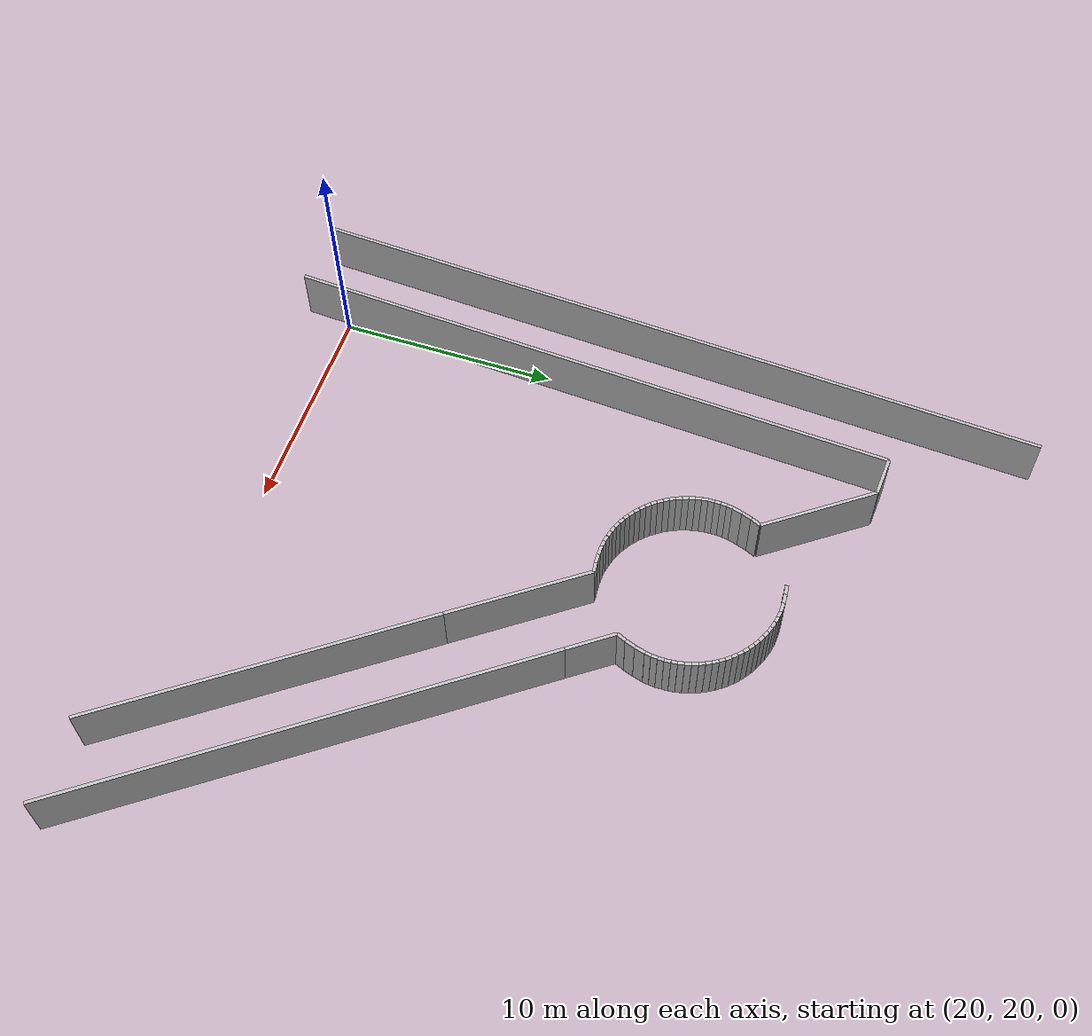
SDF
<?xml version="1.0" ?>
<sdf version="1.6">
  <model name="sps_4729">
    <pose frame="">0 0 0 0 -0 0</pose>
    <static>1</static>
    <self_collide>0</self_collide>
    <allow_auto_disable>0</allow_auto_disable>
    <link name="Wall81">
      <kinematic>0</kinematic>
      <gravity>1</gravity>
      <self_collide>0</self_collide>
      <collision name="collision">
        <geometry>
          <box>
            <size>1.7975 0.15 2.5</size>
          </box>
        </geometry>
        <pose frame="">0 0 0 0 -0 0</pose>
      </collision>
      <visual name="visual">
        <geometry>
          <box>
            <size>1.7975 0.15 2.5</size>
          </box>
        </geometry>
        <pose frame="">0 0 0 0 -0 0</pose>
        <cast_shadows>1</cast_shadows>
        <transparency>0.0</transparency>
      </visual>
      <pose frame="">22.1623 46.0366 1.25 0 0 -0.0584368</pose>
    </link>
    <link name="Wall168">
      <kinematic>0</kinematic>
      <gravity>1</gravity>
      <self_collide>0</self_collide>
      <collision name="collision">
        <geometry>
          <box>
            <size>15.403 0.15 2.5</size>
          </box>
        </geometry>
        <pose frame="">0 0 0 0 -0 0</pose>
      </collision>
      <visual name="visual">
        <geometry>
          <box>
            <size>15.403 0.15 2.5</size>
          </box>
        </geometry>
        <pose frame="">0 0 0 0 -0 0</pose>
        <cast_shadows>1</cast_shadows>
        <transparency>0.0</transparency>
      </visual>
      <pose frame="">39.0073 24.1157 1.25 0 -0 2.20088</pose>
    </link>
    <link name="Wall169">
      <kinematic>0</kinematic>
      <gravity>1</gravity>
      <self_collide>0</self_collide>
      <collision name="collision">
        <geometry>
          <box>
            <size>6.53348 0.15 2.5</size>
          </box>
        </geometry>
        <pose frame="">0 0 0 0 -0 0</pose>
      </collision>
      <visual name="visual">
        <geometry>
          <box>
            <size>6.53348 0.15 2.5</size>
          </box>
        </geometry>
        <pose frame="">0 0 0 0 -0 0</pose>
        <cast_shadows>1</cast_shadows>
        <transparency>0.0</transparency>
      </visual>
      <pose frame="">32.5446 32.9778 1.25 0 -0 2.20088</pose>
    </link>
    <link name="Wall325">
      <kinematic>0</kinematic>
      <gravity>1</gravity>
      <self_collide>0</self_collide>
      <collision name="collision">
        <geometry>
          <box>
            <size>5.38312 0.15 2.5</size>
          </box>
        </geometry>
        <pose frame="">0 0 0 0 -0 0</pose>
      </collision>
      <visual name="visual">
        <geometry>
          <box>
            <size>5.38312 0.15 2.5</size>
          </box>
        </geometry>
        <pose frame="">0 0 0 0 -0 0</pose>
        <cast_shadows>1</cast_shadows>
        <transparency>0.0</transparency>
      </visual>
      <pose frame="">24.6453 43.8093 1.25 0 0 -0.940765</pose>
    </link>
    <link name="Wall401">
      <kinematic>0</kinematic>
      <gravity>1</gravity>
      <self_collide>0</self_collide>
      <collision name="collision">
        <geometry>
          <box>
            <size>21.9145 0.15 2.5</size>
          </box>
        </geometry>
        <pose frame="">0 0 0 0 -0 0</pose>
      </collision>
      <visual name="visual">
        <geometry>
          <box>
            <size>21.9145 0.15 2.5</size>
          </box>
        </geometry>
        <pose frame="">0 0 0 0 -0 0</pose>
        <cast_shadows>1</cast_shadows>
        <transparency>0.0</transparency>
      </visual>
      <pose frame="">40.9256 26.7463 1.25 0 -0 2.20088</pose>
    </link>
    <link name="Wall402">
      <kinematic>0</kinematic>
      <gravity>1</gravity>
      <self_collide>0</self_collide>
      <collision name="collision">
        <geometry>
          <box>
            <size>2.26266 0.15 2.5</size>
          </box>
        </geometry>
        <pose frame="">0 0 0 0 -0 0</pose>
      </collision>
      <visual name="visual">
        <geometry>
          <box>
            <size>2.26266 0.15 2.5</size>
          </box>
        </geometry>
        <pose frame="">0 0 0 0 -0 0</pose>
        <cast_shadows>1</cast_shadows>
        <transparency>0.0</transparency>
      </visual>
      <pose frame="">33.8028 36.5136 1.25 0 -0 2.20088</pose>
    </link>
    <link name="Wall588">
      <kinematic>0</kinematic>
      <gravity>1</gravity>
      <self_collide>0</self_collide>
      <collision name="collision">
        <geometry>
          <box>
            <size>34.4283 0.15 2.5</size>
          </box>
        </geometry>
        <pose frame="">0 0 0 0 -0 0</pose>
      </collision>
      <visual name="visual">
        <geometry>
          <box>
            <size>34.4283 0.15 2.5</size>
          </box>
        </geometry>
        <pose frame="">0 0 0 0 -0 0</pose>
        <cast_shadows>1</cast_shadows>
        <transparency>0.0</transparency>
      </visual>
      <pose frame="">17.4748 35.0778 1.25 0 0 -1.62928</pose>
    </link>
    <link name="Wall667">
      <kinematic>0</kinematic>
      <gravity>1</gravity>
      <self_collide>0</self_collide>
      <collision name="collision">
        <geometry>
          <box>
            <size>28.2443 0.15 2.5</size>
          </box>
        </geometry>
        <pose frame="">0 0 0 0 -0 0</pose>
      </collision>
      <visual name="visual">
        <geometry>
          <box>
            <size>28.2443 0.15 2.5</size>
          </box>
        </geometry>
        <pose frame="">0 0 0 0 -0 0</pose>
        <cast_shadows>1</cast_shadows>
        <transparency>0.0</transparency>
      </visual>
      <pose frame="">20.4395 31.9911 1.25 0 0 -1.62929</pose>
    </link>
    <link name="Wall4670">
      <kinematic>0</kinematic>
      <gravity>1</gravity>
      <self_collide>0</self_collide>
      <collision name="collision">
        <geometry>
          <box>
            <size>0.474831 0.15 2.5</size>
          </box>
        </geometry>
        <pose frame="">0 0 0 0 -0 0</pose>
      </collision>
      <visual name="visual">
        <geometry>
          <box>
            <size>0.474831 0.15 2.5</size>
          </box>
        </geometry>
        <pose frame="">0 0 0 0 -0 0</pose>
        <cast_shadows>1</cast_shadows>
        <transparency>0.0</transparency>
      </visual>
      <pose frame="">33.2309 37.6454 1.25 0 -0 1.16052</pose>
    </link>
    <link name="Wall4671">
      <kinematic>0</kinematic>
      <gravity>1</gravity>
      <self_collide>0</self_collide>
      <collision name="collision">
        <geometry>
          <box>
            <size>0.474942 0.15 2.5</size>
          </box>
        </geometry>
        <pose frame="">0 0 0 0 -0 0</pose>
      </collision>
      <visual name="visual">
        <geometry>
          <box>
            <size>0.474942 0.15 2.5</size>
          </box>
        </geometry>
        <pose frame="">0 0 0 0 -0 0</pose>
        <cast_shadows>1</cast_shadows>
        <transparency>0.0</transparency>
      </visual>
      <pose frame="">33.4048 38.087 1.25 0 -0 1.2308</pose>
    </link>
    <link name="Wall4672">
      <kinematic>0</kinematic>
      <gravity>1</gravity>
      <self_collide>0</self_collide>
      <collision name="collision">
        <geometry>
          <box>
            <size>0.474892 0.15 2.5</size>
          </box>
        </geometry>
        <pose frame="">0 0 0 0 -0 0</pose>
      </collision>
      <visual name="visual">
        <geometry>
          <box>
            <size>0.474892 0.15 2.5</size>
          </box>
        </geometry>
        <pose frame="">0 0 0 0 -0 0</pose>
        <cast_shadows>1</cast_shadows>
        <transparency>0.0</transparency>
      </visual>
      <pose frame="">33.5474 38.5397 1.25 0 -0 1.30044</pose>
    </link>
    <link name="Wall4673">
      <kinematic>0</kinematic>
      <gravity>1</gravity>
      <self_collide>0</self_collide>
      <collision name="collision">
        <geometry>
          <box>
            <size>0.279036 0.15 2.5</size>
          </box>
        </geometry>
        <pose frame="">0 0 0 0 -0 0</pose>
      </collision>
      <visual name="visual">
        <geometry>
          <box>
            <size>0.279036 0.15 2.5</size>
          </box>
        </geometry>
        <pose frame="">0 0 0 0 -0 0</pose>
        <cast_shadows>1</cast_shadows>
        <transparency>0.0</transparency>
      </visual>
      <pose frame="">33.6328 38.9063 1.25 0 -0 1.41309</pose>
    </link>
    <link name="Wall4674">
      <kinematic>0</kinematic>
      <gravity>1</gravity>
      <self_collide>0</self_collide>
      <collision name="collision">
        <geometry>
          <box>
            <size>0.279262 0.15 2.5</size>
          </box>
        </geometry>
        <pose frame="">0 0 0 0 -0 0</pose>
      </collision>
      <visual name="visual">
        <geometry>
          <box>
            <size>0.279262 0.15 2.5</size>
          </box>
        </geometry>
        <pose frame="">0 0 0 0 -0 0</pose>
        <cast_shadows>1</cast_shadows>
        <transparency>0.0</transparency>
      </visual>
      <pose frame="">33.6669 39.1832 1.25 0 -0 1.48348</pose>
    </link>
    <link name="Wall4675">
      <kinematic>0</kinematic>
      <gravity>1</gravity>
      <self_collide>0</self_collide>
      <collision name="collision">
        <geometry>
          <box>
            <size>0.279277 0.15 2.5</size>
          </box>
        </geometry>
        <pose frame="">0 0 0 0 -0 0</pose>
      </collision>
      <visual name="visual">
        <geometry>
          <box>
            <size>0.279277 0.15 2.5</size>
          </box>
        </geometry>
        <pose frame="">0 0 0 0 -0 0</pose>
        <cast_shadows>1</cast_shadows>
        <transparency>0.0</transparency>
      </visual>
      <pose frame="">33.6814 39.4619 1.25 0 -0 1.55353</pose>
    </link>
    <link name="Wall4676">
      <kinematic>0</kinematic>
      <gravity>1</gravity>
      <self_collide>0</self_collide>
      <collision name="collision">
        <geometry>
          <box>
            <size>0.279129 0.15 2.5</size>
          </box>
        </geometry>
        <pose frame="">0 0 0 0 -0 0</pose>
      </collision>
      <visual name="visual">
        <geometry>
          <box>
            <size>0.279129 0.15 2.5</size>
          </box>
        </geometry>
        <pose frame="">0 0 0 0 -0 0</pose>
        <cast_shadows>1</cast_shadows>
        <transparency>0.0</transparency>
      </visual>
      <pose frame="">33.6766 39.7409 1.25 0 -0 1.62308</pose>
    </link>
    <link name="Wall4677">
      <kinematic>0</kinematic>
      <gravity>1</gravity>
      <self_collide>0</self_collide>
      <collision name="collision">
        <geometry>
          <box>
            <size>0.279276 0.15 2.5</size>
          </box>
        </geometry>
        <pose frame="">0 0 0 0 -0 0</pose>
      </collision>
      <visual name="visual">
        <geometry>
          <box>
            <size>0.279276 0.15 2.5</size>
          </box>
        </geometry>
        <pose frame="">0 0 0 0 -0 0</pose>
        <cast_shadows>1</cast_shadows>
        <transparency>0.0</transparency>
      </visual>
      <pose frame="">33.6524 40.0189 1.25 0 -0 1.69217</pose>
    </link>
    <link name="Wall4678">
      <kinematic>0</kinematic>
      <gravity>1</gravity>
      <self_collide>0</self_collide>
      <collision name="collision">
        <geometry>
          <box>
            <size>0.279108 0.15 2.5</size>
          </box>
        </geometry>
        <pose frame="">0 0 0 0 -0 0</pose>
      </collision>
      <visual name="visual">
        <geometry>
          <box>
            <size>0.279108 0.15 2.5</size>
          </box>
        </geometry>
        <pose frame="">0 0 0 0 -0 0</pose>
        <cast_shadows>1</cast_shadows>
        <transparency>0.0</transparency>
      </visual>
      <pose frame="">33.6088 40.2945 1.25 0 -0 1.76266</pose>
    </link>
    <link name="Wall4679">
      <kinematic>0</kinematic>
      <gravity>1</gravity>
      <self_collide>0</self_collide>
      <collision name="collision">
        <geometry>
          <box>
            <size>0.279094 0.15 2.5</size>
          </box>
        </geometry>
        <pose frame="">0 0 0 0 -0 0</pose>
      </collision>
      <visual name="visual">
        <geometry>
          <box>
            <size>0.279094 0.15 2.5</size>
          </box>
        </geometry>
        <pose frame="">0 0 0 0 -0 0</pose>
        <cast_shadows>1</cast_shadows>
        <transparency>0.0</transparency>
      </visual>
      <pose frame="">33.5461 40.5663 1.25 0 -0 1.83248</pose>
    </link>
    <link name="Wall4680">
      <kinematic>0</kinematic>
      <gravity>1</gravity>
      <self_collide>0</self_collide>
      <collision name="collision">
        <geometry>
          <box>
            <size>0.279281 0.15 2.5</size>
          </box>
        </geometry>
        <pose frame="">0 0 0 0 -0 0</pose>
      </collision>
      <visual name="visual">
        <geometry>
          <box>
            <size>0.279281 0.15 2.5</size>
          </box>
        </geometry>
        <pose frame="">0 0 0 0 -0 0</pose>
        <cast_shadows>1</cast_shadows>
        <transparency>0.0</transparency>
      </visual>
      <pose frame="">33.4645 40.8331 1.25 0 -0 1.90271</pose>
    </link>
    <link name="Wall4681">
      <kinematic>0</kinematic>
      <gravity>1</gravity>
      <self_collide>0</self_collide>
      <collision name="collision">
        <geometry>
          <box>
            <size>0.279157 0.15 2.5</size>
          </box>
        </geometry>
        <pose frame="">0 0 0 0 -0 0</pose>
      </collision>
      <visual name="visual">
        <geometry>
          <box>
            <size>0.279157 0.15 2.5</size>
          </box>
        </geometry>
        <pose frame="">0 0 0 0 -0 0</pose>
        <cast_shadows>1</cast_shadows>
        <transparency>0.0</transparency>
      </visual>
      <pose frame="">33.3646 41.0936 1.25 0 -0 1.97173</pose>
    </link>
    <link name="Wall4682">
      <kinematic>0</kinematic>
      <gravity>1</gravity>
      <self_collide>0</self_collide>
      <collision name="collision">
        <geometry>
          <box>
            <size>0.279161 0.15 2.5</size>
          </box>
        </geometry>
        <pose frame="">0 0 0 0 -0 0</pose>
      </collision>
      <visual name="visual">
        <geometry>
          <box>
            <size>0.279161 0.15 2.5</size>
          </box>
        </geometry>
        <pose frame="">0 0 0 0 -0 0</pose>
        <cast_shadows>1</cast_shadows>
        <transparency>0.0</transparency>
      </visual>
      <pose frame="">33.2468 41.3465 1.25 0 -0 2.04168</pose>
    </link>
    <link name="Wall4683">
      <kinematic>0</kinematic>
      <gravity>1</gravity>
      <self_collide>0</self_collide>
      <collision name="collision">
        <geometry>
          <box>
            <size>0.27925 0.15 2.5</size>
          </box>
        </geometry>
        <pose frame="">0 0 0 0 -0 0</pose>
      </collision>
      <visual name="visual">
        <geometry>
          <box>
            <size>0.27925 0.15 2.5</size>
          </box>
        </geometry>
        <pose frame="">0 0 0 0 -0 0</pose>
        <cast_shadows>1</cast_shadows>
        <transparency>0.0</transparency>
      </visual>
      <pose frame="">33.1115 41.5906 1.25 0 -0 2.11174</pose>
    </link>
    <link name="Wall4684">
      <kinematic>0</kinematic>
      <gravity>1</gravity>
      <self_collide>0</self_collide>
      <collision name="collision">
        <geometry>
          <box>
            <size>0.279196 0.15 2.5</size>
          </box>
        </geometry>
        <pose frame="">0 0 0 0 -0 0</pose>
      </collision>
      <visual name="visual">
        <geometry>
          <box>
            <size>0.279196 0.15 2.5</size>
          </box>
        </geometry>
        <pose frame="">0 0 0 0 -0 0</pose>
        <cast_shadows>1</cast_shadows>
        <transparency>0.0</transparency>
      </visual>
      <pose frame="">32.9596 41.8247 1.25 0 -0 2.18093</pose>
    </link>
    <link name="Wall4685">
      <kinematic>0</kinematic>
      <gravity>1</gravity>
      <self_collide>0</self_collide>
      <collision name="collision">
        <geometry>
          <box>
            <size>0.279133 0.15 2.5</size>
          </box>
        </geometry>
        <pose frame="">0 0 0 0 -0 0</pose>
      </collision>
      <visual name="visual">
        <geometry>
          <box>
            <size>0.279133 0.15 2.5</size>
          </box>
        </geometry>
        <pose frame="">0 0 0 0 -0 0</pose>
        <cast_shadows>1</cast_shadows>
        <transparency>0.0</transparency>
      </visual>
      <pose frame="">32.7919 42.0476 1.25 0 -0 2.25117</pose>
    </link>
    <link name="Wall4686">
      <kinematic>0</kinematic>
      <gravity>1</gravity>
      <self_collide>0</self_collide>
      <collision name="collision">
        <geometry>
          <box>
            <size>0.279366 0.15 2.5</size>
          </box>
        </geometry>
        <pose frame="">0 0 0 0 -0 0</pose>
      </collision>
      <visual name="visual">
        <geometry>
          <box>
            <size>0.279366 0.15 2.5</size>
          </box>
        </geometry>
        <pose frame="">0 0 0 0 -0 0</pose>
        <cast_shadows>1</cast_shadows>
        <transparency>0.0</transparency>
      </visual>
      <pose frame="">32.6088 42.2583 1.25 0 -0 2.32081</pose>
    </link>
    <link name="Wall4687">
      <kinematic>0</kinematic>
      <gravity>1</gravity>
      <self_collide>0</self_collide>
      <collision name="collision">
        <geometry>
          <box>
            <size>0.279188 0.15 2.5</size>
          </box>
        </geometry>
        <pose frame="">0 0 0 0 -0 0</pose>
      </collision>
      <visual name="visual">
        <geometry>
          <box>
            <size>0.279188 0.15 2.5</size>
          </box>
        </geometry>
        <pose frame="">0 0 0 0 -0 0</pose>
        <cast_shadows>1</cast_shadows>
        <transparency>0.0</transparency>
      </visual>
      <pose frame="">32.4116 42.4557 1.25 0 -0 2.39098</pose>
    </link>
    <link name="Wall4688">
      <kinematic>0</kinematic>
      <gravity>1</gravity>
      <self_collide>0</self_collide>
      <collision name="collision">
        <geometry>
          <box>
            <size>0.279295 0.15 2.5</size>
          </box>
        </geometry>
        <pose frame="">0 0 0 0 -0 0</pose>
      </collision>
      <visual name="visual">
        <geometry>
          <box>
            <size>0.279295 0.15 2.5</size>
          </box>
        </geometry>
        <pose frame="">0 0 0 0 -0 0</pose>
        <cast_shadows>1</cast_shadows>
        <transparency>0.0</transparency>
      </visual>
      <pose frame="">32.2009 42.6388 1.25 0 -0 2.46084</pose>
    </link>
    <link name="Wall4689">
      <kinematic>0</kinematic>
      <gravity>1</gravity>
      <self_collide>0</self_collide>
      <collision name="collision">
        <geometry>
          <box>
            <size>0.279136 0.15 2.5</size>
          </box>
        </geometry>
        <pose frame="">0 0 0 0 -0 0</pose>
      </collision>
      <visual name="visual">
        <geometry>
          <box>
            <size>0.279136 0.15 2.5</size>
          </box>
        </geometry>
        <pose frame="">0 0 0 0 -0 0</pose>
        <cast_shadows>1</cast_shadows>
        <transparency>0.0</transparency>
      </visual>
      <pose frame="">31.9781 42.8068 1.25 0 -0 2.53024</pose>
    </link>
    <link name="Wall4690">
      <kinematic>0</kinematic>
      <gravity>1</gravity>
      <self_collide>0</self_collide>
      <collision name="collision">
        <geometry>
          <box>
            <size>0.279094 0.15 2.5</size>
          </box>
        </geometry>
        <pose frame="">0 0 0 0 -0 0</pose>
      </collision>
      <visual name="visual">
        <geometry>
          <box>
            <size>0.279094 0.15 2.5</size>
          </box>
        </geometry>
        <pose frame="">0 0 0 0 -0 0</pose>
        <cast_shadows>1</cast_shadows>
        <transparency>0.0</transparency>
      </visual>
      <pose frame="">31.7443 42.9588 1.25 0 -0 2.60031</pose>
    </link>
    <link name="Wall4691">
      <kinematic>0</kinematic>
      <gravity>1</gravity>
      <self_collide>0</self_collide>
      <collision name="collision">
        <geometry>
          <box>
            <size>0.279216 0.15 2.5</size>
          </box>
        </geometry>
        <pose frame="">0 0 0 0 -0 0</pose>
      </collision>
      <visual name="visual">
        <geometry>
          <box>
            <size>0.279216 0.15 2.5</size>
          </box>
        </geometry>
        <pose frame="">0 0 0 0 -0 0</pose>
        <cast_shadows>1</cast_shadows>
        <transparency>0.0</transparency>
      </visual>
      <pose frame="">31.5003 43.0941 1.25 0 -0 2.67032</pose>
    </link>
    <link name="Wall4692">
      <kinematic>0</kinematic>
      <gravity>1</gravity>
      <self_collide>0</self_collide>
      <collision name="collision">
        <geometry>
          <box>
            <size>0.279252 0.15 2.5</size>
          </box>
        </geometry>
        <pose frame="">0 0 0 0 -0 0</pose>
      </collision>
      <visual name="visual">
        <geometry>
          <box>
            <size>0.279252 0.15 2.5</size>
          </box>
        </geometry>
        <pose frame="">0 0 0 0 -0 0</pose>
        <cast_shadows>1</cast_shadows>
        <transparency>0.0</transparency>
      </visual>
      <pose frame="">31.2474 43.2121 1.25 0 -0 2.73986</pose>
    </link>
    <link name="Wall4693">
      <kinematic>0</kinematic>
      <gravity>1</gravity>
      <self_collide>0</self_collide>
      <collision name="collision">
        <geometry>
          <box>
            <size>0.279223 0.15 2.5</size>
          </box>
        </geometry>
        <pose frame="">0 0 0 0 -0 0</pose>
      </collision>
      <visual name="visual">
        <geometry>
          <box>
            <size>0.279223 0.15 2.5</size>
          </box>
        </geometry>
        <pose frame="">0 0 0 0 -0 0</pose>
        <cast_shadows>1</cast_shadows>
        <transparency>0.0</transparency>
      </visual>
      <pose frame="">30.9869 43.3122 1.25 0 -0 2.80961</pose>
    </link>
    <link name="Wall4694">
      <kinematic>0</kinematic>
      <gravity>1</gravity>
      <self_collide>0</self_collide>
      <collision name="collision">
        <geometry>
          <box>
            <size>0.2792 0.15 2.5</size>
          </box>
        </geometry>
        <pose frame="">0 0 0 0 -0 0</pose>
      </collision>
      <visual name="visual">
        <geometry>
          <box>
            <size>0.2792 0.15 2.5</size>
          </box>
        </geometry>
        <pose frame="">0 0 0 0 -0 0</pose>
        <cast_shadows>1</cast_shadows>
        <transparency>0.0</transparency>
      </visual>
      <pose frame="">30.7201 43.3939 1.25 0 -0 2.87933</pose>
    </link>
    <link name="Wall4695">
      <kinematic>0</kinematic>
      <gravity>1</gravity>
      <self_collide>0</self_collide>
      <collision name="collision">
        <geometry>
          <box>
            <size>0.279108 0.15 2.5</size>
          </box>
        </geometry>
        <pose frame="">0 0 0 0 -0 0</pose>
      </collision>
      <visual name="visual">
        <geometry>
          <box>
            <size>0.279108 0.15 2.5</size>
          </box>
        </geometry>
        <pose frame="">0 0 0 0 -0 0</pose>
        <cast_shadows>1</cast_shadows>
        <transparency>0.0</transparency>
      </visual>
      <pose frame="">30.4482 43.4567 1.25 0 -0 2.94973</pose>
    </link>
    <link name="Wall4696">
      <kinematic>0</kinematic>
      <gravity>1</gravity>
      <self_collide>0</self_collide>
      <collision name="collision">
        <geometry>
          <box>
            <size>0.279078 0.15 2.5</size>
          </box>
        </geometry>
        <pose frame="">0 0 0 0 -0 0</pose>
      </collision>
      <visual name="visual">
        <geometry>
          <box>
            <size>0.279078 0.15 2.5</size>
          </box>
        </geometry>
        <pose frame="">0 0 0 0 -0 0</pose>
        <cast_shadows>1</cast_shadows>
        <transparency>0.0</transparency>
      </visual>
      <pose frame="">30.1728 43.5004 1.25 0 -0 3.01881</pose>
    </link>
    <link name="Wall4697">
      <kinematic>0</kinematic>
      <gravity>1</gravity>
      <self_collide>0</self_collide>
      <collision name="collision">
        <geometry>
          <box>
            <size>0.430657 0.15 2.5</size>
          </box>
        </geometry>
        <pose frame="">0 0 0 0 -0 0</pose>
      </collision>
      <visual name="visual">
        <geometry>
          <box>
            <size>0.430657 0.15 2.5</size>
          </box>
        </geometry>
        <pose frame="">0 0 0 0 -0 0</pose>
        <cast_shadows>1</cast_shadows>
        <transparency>0.0</transparency>
      </visual>
      <pose frame="">29.819 43.5209 1.25 0 -0 3.12572</pose>
    </link>
    <link name="Wall4698">
      <kinematic>0</kinematic>
      <gravity>1</gravity>
      <self_collide>0</self_collide>
      <collision name="collision">
        <geometry>
          <box>
            <size>0.431078 0.15 2.5</size>
          </box>
        </geometry>
        <pose frame="">0 0 0 0 -0 0</pose>
      </collision>
      <visual name="visual">
        <geometry>
          <box>
            <size>0.431078 0.15 2.5</size>
          </box>
        </geometry>
        <pose frame="">0 0 0 0 -0 0</pose>
        <cast_shadows>1</cast_shadows>
        <transparency>0.0</transparency>
      </visual>
      <pose frame="">29.3884 43.5124 1.25 0 0 -3.08635</pose>
    </link>
    <link name="Wall4699">
      <kinematic>0</kinematic>
      <gravity>1</gravity>
      <self_collide>0</self_collide>
      <collision name="collision">
        <geometry>
          <box>
            <size>0.430669 0.15 2.5</size>
          </box>
        </geometry>
        <pose frame="">0 0 0 0 -0 0</pose>
      </collision>
      <visual name="visual">
        <geometry>
          <box>
            <size>0.430669 0.15 2.5</size>
          </box>
        </geometry>
        <pose frame="">0 0 0 0 -0 0</pose>
        <cast_shadows>1</cast_shadows>
        <transparency>0.0</transparency>
      </visual>
      <pose frame="">28.9596 43.4739 1.25 0 0 -3.01769</pose>
    </link>
    <link name="Wall8146">
      <kinematic>0</kinematic>
      <gravity>1</gravity>
      <self_collide>0</self_collide>
      <collision name="collision">
        <geometry>
          <box>
            <size>0.473804 0.15 2.5</size>
          </box>
        </geometry>
        <pose frame="">0 0 0 0 -0 0</pose>
      </collision>
      <visual name="visual">
        <geometry>
          <box>
            <size>0.473804 0.15 2.5</size>
          </box>
        </geometry>
        <pose frame="">0 0 0 0 -0 0</pose>
        <cast_shadows>1</cast_shadows>
        <transparency>0.0</transparency>
      </visual>
      <pose frame="">26.1366 41.4172 1.25 0 0 -1.98061</pose>
    </link>
    <link name="Wall8147">
      <kinematic>0</kinematic>
      <gravity>1</gravity>
      <self_collide>0</self_collide>
      <collision name="collision">
        <geometry>
          <box>
            <size>0.473726 0.15 2.5</size>
          </box>
        </geometry>
        <pose frame="">0 0 0 0 -0 0</pose>
      </collision>
      <visual name="visual">
        <geometry>
          <box>
            <size>0.473726 0.15 2.5</size>
          </box>
        </geometry>
        <pose frame="">0 0 0 0 -0 0</pose>
        <cast_shadows>1</cast_shadows>
        <transparency>0.0</transparency>
      </visual>
      <pose frame="">25.9632 40.9766 1.25 0 0 -1.91088</pose>
    </link>
    <link name="Wall8148">
      <kinematic>0</kinematic>
      <gravity>1</gravity>
      <self_collide>0</self_collide>
      <collision name="collision">
        <geometry>
          <box>
            <size>0.473954 0.15 2.5</size>
          </box>
        </geometry>
        <pose frame="">0 0 0 0 -0 0</pose>
      </collision>
      <visual name="visual">
        <geometry>
          <box>
            <size>0.473954 0.15 2.5</size>
          </box>
        </geometry>
        <pose frame="">0 0 0 0 -0 0</pose>
        <cast_shadows>1</cast_shadows>
        <transparency>0.0</transparency>
      </visual>
      <pose frame="">25.821 40.5249 1.25 0 0 -1.84076</pose>
    </link>
    <link name="Wall8149">
      <kinematic>0</kinematic>
      <gravity>1</gravity>
      <self_collide>0</self_collide>
      <collision name="collision">
        <geometry>
          <box>
            <size>0.279126 0.15 2.5</size>
          </box>
        </geometry>
        <pose frame="">0 0 0 0 -0 0</pose>
      </collision>
      <visual name="visual">
        <geometry>
          <box>
            <size>0.279126 0.15 2.5</size>
          </box>
        </geometry>
        <pose frame="">0 0 0 0 -0 0</pose>
        <cast_shadows>1</cast_shadows>
        <transparency>0.0</transparency>
      </visual>
      <pose frame="">25.7358 40.1587 1.25 0 0 -1.72911</pose>
    </link>
    <link name="Wall8150">
      <kinematic>0</kinematic>
      <gravity>1</gravity>
      <self_collide>0</self_collide>
      <collision name="collision">
        <geometry>
          <box>
            <size>0.279262 0.15 2.5</size>
          </box>
        </geometry>
        <pose frame="">0 0 0 0 -0 0</pose>
      </collision>
      <visual name="visual">
        <geometry>
          <box>
            <size>0.279262 0.15 2.5</size>
          </box>
        </geometry>
        <pose frame="">0 0 0 0 -0 0</pose>
        <cast_shadows>1</cast_shadows>
        <transparency>0.0</transparency>
      </visual>
      <pose frame="">25.7017 39.8818 1.25 0 0 -1.65811</pose>
    </link>
    <link name="Wall8151">
      <kinematic>0</kinematic>
      <gravity>1</gravity>
      <self_collide>0</self_collide>
      <collision name="collision">
        <geometry>
          <box>
            <size>0.279037 0.15 2.5</size>
          </box>
        </geometry>
        <pose frame="">0 0 0 0 -0 0</pose>
      </collision>
      <visual name="visual">
        <geometry>
          <box>
            <size>0.279037 0.15 2.5</size>
          </box>
        </geometry>
        <pose frame="">0 0 0 0 -0 0</pose>
        <cast_shadows>1</cast_shadows>
        <transparency>0.0</transparency>
      </visual>
      <pose frame="">25.687 39.6032 1.25 0 0 -1.58873</pose>
    </link>
    <link name="Wall8152">
      <kinematic>0</kinematic>
      <gravity>1</gravity>
      <self_collide>0</self_collide>
      <collision name="collision">
        <geometry>
          <box>
            <size>0.27919 0.15 2.5</size>
          </box>
        </geometry>
        <pose frame="">0 0 0 0 -0 0</pose>
      </collision>
      <visual name="visual">
        <geometry>
          <box>
            <size>0.27919 0.15 2.5</size>
          </box>
        </geometry>
        <pose frame="">0 0 0 0 -0 0</pose>
        <cast_shadows>1</cast_shadows>
        <transparency>0.0</transparency>
      </visual>
      <pose frame="">25.6918 39.3243 1.25 0 0 -1.51852</pose>
    </link>
    <link name="Wall8153">
      <kinematic>0</kinematic>
      <gravity>1</gravity>
      <self_collide>0</self_collide>
      <collision name="collision">
        <geometry>
          <box>
            <size>0.279298 0.15 2.5</size>
          </box>
        </geometry>
        <pose frame="">0 0 0 0 -0 0</pose>
      </collision>
      <visual name="visual">
        <geometry>
          <box>
            <size>0.279298 0.15 2.5</size>
          </box>
        </geometry>
        <pose frame="">0 0 0 0 -0 0</pose>
        <cast_shadows>1</cast_shadows>
        <transparency>0.0</transparency>
      </visual>
      <pose frame="">25.7161 39.0463 1.25 0 0 -1.44877</pose>
    </link>
    <link name="Wall8154">
      <kinematic>0</kinematic>
      <gravity>1</gravity>
      <self_collide>0</self_collide>
      <collision name="collision">
        <geometry>
          <box>
            <size>0.279108 0.15 2.5</size>
          </box>
        </geometry>
        <pose frame="">0 0 0 0 -0 0</pose>
      </collision>
      <visual name="visual">
        <geometry>
          <box>
            <size>0.279108 0.15 2.5</size>
          </box>
        </geometry>
        <pose frame="">0 0 0 0 -0 0</pose>
        <cast_shadows>1</cast_shadows>
        <transparency>0.0</transparency>
      </visual>
      <pose frame="">25.7597 38.7707 1.25 0 0 -1.37893</pose>
    </link>
    <link name="Wall8155">
      <kinematic>0</kinematic>
      <gravity>1</gravity>
      <self_collide>0</self_collide>
      <collision name="collision">
        <geometry>
          <box>
            <size>0.279271 0.15 2.5</size>
          </box>
        </geometry>
        <pose frame="">0 0 0 0 -0 0</pose>
      </collision>
      <visual name="visual">
        <geometry>
          <box>
            <size>0.279271 0.15 2.5</size>
          </box>
        </geometry>
        <pose frame="">0 0 0 0 -0 0</pose>
        <cast_shadows>1</cast_shadows>
        <transparency>0.0</transparency>
      </visual>
      <pose frame="">25.8224 38.4988 1.25 0 0 -1.30928</pose>
    </link>
    <link name="Wall8156">
      <kinematic>0</kinematic>
      <gravity>1</gravity>
      <self_collide>0</self_collide>
      <collision name="collision">
        <geometry>
          <box>
            <size>0.279201 0.15 2.5</size>
          </box>
        </geometry>
        <pose frame="">0 0 0 0 -0 0</pose>
      </collision>
      <visual name="visual">
        <geometry>
          <box>
            <size>0.279201 0.15 2.5</size>
          </box>
        </geometry>
        <pose frame="">0 0 0 0 -0 0</pose>
        <cast_shadows>1</cast_shadows>
        <transparency>0.0</transparency>
      </visual>
      <pose frame="">25.9039 38.2319 1.25 0 0 -1.23971</pose>
    </link>
    <link name="Wall8157">
      <kinematic>0</kinematic>
      <gravity>1</gravity>
      <self_collide>0</self_collide>
      <collision name="collision">
        <geometry>
          <box>
            <size>0.279349 0.15 2.5</size>
          </box>
        </geometry>
        <pose frame="">0 0 0 0 -0 0</pose>
      </collision>
      <visual name="visual">
        <geometry>
          <box>
            <size>0.279349 0.15 2.5</size>
          </box>
        </geometry>
        <pose frame="">0 0 0 0 -0 0</pose>
        <cast_shadows>1</cast_shadows>
        <transparency>0.0</transparency>
      </visual>
      <pose frame="">26.0037 37.9713 1.25 0 0 -1.16992</pose>
    </link>
    <link name="Wall8158">
      <kinematic>0</kinematic>
      <gravity>1</gravity>
      <self_collide>0</self_collide>
      <collision name="collision">
        <geometry>
          <box>
            <size>0.279081 0.15 2.5</size>
          </box>
        </geometry>
        <pose frame="">0 0 0 0 -0 0</pose>
      </collision>
      <visual name="visual">
        <geometry>
          <box>
            <size>0.279081 0.15 2.5</size>
          </box>
        </geometry>
        <pose frame="">0 0 0 0 -0 0</pose>
        <cast_shadows>1</cast_shadows>
        <transparency>0.0</transparency>
      </visual>
      <pose frame="">26.1217 37.7184 1.25 0 0 -1.09903</pose>
    </link>
    <link name="Wall8159">
      <kinematic>0</kinematic>
      <gravity>1</gravity>
      <self_collide>0</self_collide>
      <collision name="collision">
        <geometry>
          <box>
            <size>0.279125 0.15 2.5</size>
          </box>
        </geometry>
        <pose frame="">0 0 0 0 -0 0</pose>
      </collision>
      <visual name="visual">
        <geometry>
          <box>
            <size>0.279125 0.15 2.5</size>
          </box>
        </geometry>
        <pose frame="">0 0 0 0 -0 0</pose>
        <cast_shadows>1</cast_shadows>
        <transparency>0.0</transparency>
      </visual>
      <pose frame="">26.2569 37.4744 1.25 0 0 -1.0306</pose>
    </link>
    <link name="Wall8160">
      <kinematic>0</kinematic>
      <gravity>1</gravity>
      <self_collide>0</self_collide>
      <collision name="collision">
        <geometry>
          <box>
            <size>0.279031 0.15 2.5</size>
          </box>
        </geometry>
        <pose frame="">0 0 0 0 -0 0</pose>
      </collision>
      <visual name="visual">
        <geometry>
          <box>
            <size>0.279031 0.15 2.5</size>
          </box>
        </geometry>
        <pose frame="">0 0 0 0 -0 0</pose>
        <cast_shadows>1</cast_shadows>
        <transparency>0.0</transparency>
      </visual>
      <pose frame="">26.4087 37.2404 1.25 0 0 -0.959981</pose>
    </link>
    <link name="Wall8161">
      <kinematic>0</kinematic>
      <gravity>1</gravity>
      <self_collide>0</self_collide>
      <collision name="collision">
        <geometry>
          <box>
            <size>0.279438 0.15 2.5</size>
          </box>
        </geometry>
        <pose frame="">0 0 0 0 -0 0</pose>
      </collision>
      <visual name="visual">
        <geometry>
          <box>
            <size>0.279438 0.15 2.5</size>
          </box>
        </geometry>
        <pose frame="">0 0 0 0 -0 0</pose>
        <cast_shadows>1</cast_shadows>
        <transparency>0.0</transparency>
      </visual>
      <pose frame="">26.5766 37.0175 1.25 0 0 -0.890461</pose>
    </link>
    <link name="Wall8162">
      <kinematic>0</kinematic>
      <gravity>1</gravity>
      <self_collide>0</self_collide>
      <collision name="collision">
        <geometry>
          <box>
            <size>0.279066 0.15 2.5</size>
          </box>
        </geometry>
        <pose frame="">0 0 0 0 -0 0</pose>
      </collision>
      <visual name="visual">
        <geometry>
          <box>
            <size>0.279066 0.15 2.5</size>
          </box>
        </geometry>
        <pose frame="">0 0 0 0 -0 0</pose>
        <cast_shadows>1</cast_shadows>
        <transparency>0.0</transparency>
      </visual>
      <pose frame="">26.7595 36.8068 1.25 0 0 -0.820976</pose>
    </link>
    <link name="Wall8163">
      <kinematic>0</kinematic>
      <gravity>1</gravity>
      <self_collide>0</self_collide>
      <collision name="collision">
        <geometry>
          <box>
            <size>0.279316 0.15 2.5</size>
          </box>
        </geometry>
        <pose frame="">0 0 0 0 -0 0</pose>
      </collision>
      <visual name="visual">
        <geometry>
          <box>
            <size>0.279316 0.15 2.5</size>
          </box>
        </geometry>
        <pose frame="">0 0 0 0 -0 0</pose>
        <cast_shadows>1</cast_shadows>
        <transparency>0.0</transparency>
      </visual>
      <pose frame="">26.9567 36.6094 1.25 0 0 -0.75078</pose>
    </link>
    <link name="Wall8164">
      <kinematic>0</kinematic>
      <gravity>1</gravity>
      <self_collide>0</self_collide>
      <collision name="collision">
        <geometry>
          <box>
            <size>0.279286 0.15 2.5</size>
          </box>
        </geometry>
        <pose frame="">0 0 0 0 -0 0</pose>
      </collision>
      <visual name="visual">
        <geometry>
          <box>
            <size>0.279286 0.15 2.5</size>
          </box>
        </geometry>
        <pose frame="">0 0 0 0 -0 0</pose>
        <cast_shadows>1</cast_shadows>
        <transparency>0.0</transparency>
      </visual>
      <pose frame="">27.1674 36.4262 1.25 0 0 -0.681055</pose>
    </link>
    <link name="Wall8165">
      <kinematic>0</kinematic>
      <gravity>1</gravity>
      <self_collide>0</self_collide>
      <collision name="collision">
        <geometry>
          <box>
            <size>0.279151 0.15 2.5</size>
          </box>
        </geometry>
        <pose frame="">0 0 0 0 -0 0</pose>
      </collision>
      <visual name="visual">
        <geometry>
          <box>
            <size>0.279151 0.15 2.5</size>
          </box>
        </geometry>
        <pose frame="">0 0 0 0 -0 0</pose>
        <cast_shadows>1</cast_shadows>
        <transparency>0.0</transparency>
      </visual>
      <pose frame="">27.3902 36.2582 1.25 0 0 -0.611048</pose>
    </link>
    <link name="Wall8166">
      <kinematic>0</kinematic>
      <gravity>1</gravity>
      <self_collide>0</self_collide>
      <collision name="collision">
        <geometry>
          <box>
            <size>0.279094 0.15 2.5</size>
          </box>
        </geometry>
        <pose frame="">0 0 0 0 -0 0</pose>
      </collision>
      <visual name="visual">
        <geometry>
          <box>
            <size>0.279094 0.15 2.5</size>
          </box>
        </geometry>
        <pose frame="">0 0 0 0 -0 0</pose>
        <cast_shadows>1</cast_shadows>
        <transparency>0.0</transparency>
      </visual>
      <pose frame="">27.6241 36.1062 1.25 0 0 -0.541282</pose>
    </link>
    <link name="Wall8167">
      <kinematic>0</kinematic>
      <gravity>1</gravity>
      <self_collide>0</self_collide>
      <collision name="collision">
        <geometry>
          <box>
            <size>0.279244 0.15 2.5</size>
          </box>
        </geometry>
        <pose frame="">0 0 0 0 -0 0</pose>
      </collision>
      <visual name="visual">
        <geometry>
          <box>
            <size>0.279244 0.15 2.5</size>
          </box>
        </geometry>
        <pose frame="">0 0 0 0 -0 0</pose>
        <cast_shadows>1</cast_shadows>
        <transparency>0.0</transparency>
      </visual>
      <pose frame="">27.8681 35.9709 1.25 0 0 -0.471468</pose>
    </link>
    <link name="Wall8168">
      <kinematic>0</kinematic>
      <gravity>1</gravity>
      <self_collide>0</self_collide>
      <collision name="collision">
        <geometry>
          <box>
            <size>0.279252 0.15 2.5</size>
          </box>
        </geometry>
        <pose frame="">0 0 0 0 -0 0</pose>
      </collision>
      <visual name="visual">
        <geometry>
          <box>
            <size>0.279252 0.15 2.5</size>
          </box>
        </geometry>
        <pose frame="">0 0 0 0 -0 0</pose>
        <cast_shadows>1</cast_shadows>
        <transparency>0.0</transparency>
      </visual>
      <pose frame="">28.121 35.8529 1.25 0 0 -0.401735</pose>
    </link>
    <link name="Wall8169">
      <kinematic>0</kinematic>
      <gravity>1</gravity>
      <self_collide>0</self_collide>
      <collision name="collision">
        <geometry>
          <box>
            <size>0.279163 0.15 2.5</size>
          </box>
        </geometry>
        <pose frame="">0 0 0 0 -0 0</pose>
      </collision>
      <visual name="visual">
        <geometry>
          <box>
            <size>0.279163 0.15 2.5</size>
          </box>
        </geometry>
        <pose frame="">0 0 0 0 -0 0</pose>
        <cast_shadows>1</cast_shadows>
        <transparency>0.0</transparency>
      </visual>
      <pose frame="">28.3815 35.7529 1.25 0 0 -0.331361</pose>
    </link>
    <link name="Wall8170">
      <kinematic>0</kinematic>
      <gravity>1</gravity>
      <self_collide>0</self_collide>
      <collision name="collision">
        <geometry>
          <box>
            <size>0.279142 0.15 2.5</size>
          </box>
        </geometry>
        <pose frame="">0 0 0 0 -0 0</pose>
      </collision>
      <visual name="visual">
        <geometry>
          <box>
            <size>0.279142 0.15 2.5</size>
          </box>
        </geometry>
        <pose frame="">0 0 0 0 -0 0</pose>
        <cast_shadows>1</cast_shadows>
        <transparency>0.0</transparency>
      </visual>
      <pose frame="">28.6482 35.6713 1.25 0 0 -0.262321</pose>
    </link>
    <link name="Wall8171">
      <kinematic>0</kinematic>
      <gravity>1</gravity>
      <self_collide>0</self_collide>
      <collision name="collision">
        <geometry>
          <box>
            <size>0.279383 0.15 2.5</size>
          </box>
        </geometry>
        <pose frame="">0 0 0 0 -0 0</pose>
      </collision>
      <visual name="visual">
        <geometry>
          <box>
            <size>0.279383 0.15 2.5</size>
          </box>
        </geometry>
        <pose frame="">0 0 0 0 -0 0</pose>
        <cast_shadows>1</cast_shadows>
        <transparency>0.0</transparency>
      </visual>
      <pose frame="">28.9202 35.6084 1.25 0 0 -0.19234</pose>
    </link>
    <link name="Wall8172">
      <kinematic>0</kinematic>
      <gravity>1</gravity>
      <self_collide>0</self_collide>
      <collision name="collision">
        <geometry>
          <box>
            <size>0.279078 0.15 2.5</size>
          </box>
        </geometry>
        <pose frame="">0 0 0 0 -0 0</pose>
      </collision>
      <visual name="visual">
        <geometry>
          <box>
            <size>0.279078 0.15 2.5</size>
          </box>
        </geometry>
        <pose frame="">0 0 0 0 -0 0</pose>
        <cast_shadows>1</cast_shadows>
        <transparency>0.0</transparency>
      </visual>
      <pose frame="">29.1958 35.5646 1.25 0 0 -0.122782</pose>
    </link>
    <link name="Wall8173">
      <kinematic>0</kinematic>
      <gravity>1</gravity>
      <self_collide>0</self_collide>
      <collision name="collision">
        <geometry>
          <box>
            <size>0.43004 0.15 2.5</size>
          </box>
        </geometry>
        <pose frame="">0 0 0 0 -0 0</pose>
      </collision>
      <visual name="visual">
        <geometry>
          <box>
            <size>0.43004 0.15 2.5</size>
          </box>
        </geometry>
        <pose frame="">0 0 0 0 -0 0</pose>
        <cast_shadows>1</cast_shadows>
        <transparency>0.0</transparency>
      </visual>
      <pose frame="">29.5492 35.5443 1.25 0 0 -0.0149031</pose>
    </link>
    <link name="Wall8174">
      <kinematic>0</kinematic>
      <gravity>1</gravity>
      <self_collide>0</self_collide>
      <collision name="collision">
        <geometry>
          <box>
            <size>0.429825 0.15 2.5</size>
          </box>
        </geometry>
        <pose frame="">0 0 0 0 -0 0</pose>
      </collision>
      <visual name="visual">
        <geometry>
          <box>
            <size>0.429825 0.15 2.5</size>
          </box>
        </geometry>
        <pose frame="">0 0 0 0 -0 0</pose>
        <cast_shadows>1</cast_shadows>
        <transparency>0.0</transparency>
      </visual>
      <pose frame="">29.9788 35.5527 1.25 0 -0 0.0539862</pose>
    </link>
    <link name="Wall8175">
      <kinematic>0</kinematic>
      <gravity>1</gravity>
      <self_collide>0</self_collide>
      <collision name="collision">
        <geometry>
          <box>
            <size>0.42967 0.15 2.5</size>
          </box>
        </geometry>
        <pose frame="">0 0 0 0 -0 0</pose>
      </collision>
      <visual name="visual">
        <geometry>
          <box>
            <size>0.42967 0.15 2.5</size>
          </box>
        </geometry>
        <pose frame="">0 0 0 0 -0 0</pose>
        <cast_shadows>1</cast_shadows>
        <transparency>0.0</transparency>
      </visual>
      <pose frame="">30.4066 35.5908 1.25 0 -0 0.123615</pose>
    </link>
  </model>
</sdf>
